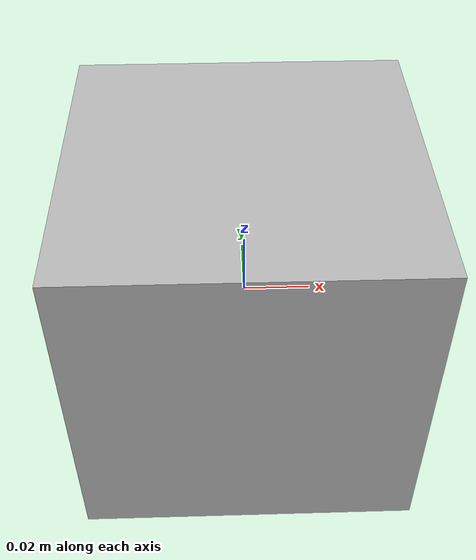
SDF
<?xml version="1.0" ?>
<sdf version="1.10">
  <model name="Cube_plain_white">
    <static>true</static>
    <link name="link">
      <collision name="collider">
        <geometry>
          <box> <size>0.1 0.1 0.1</size> </box>
        </geometry>
      </collision>

      <pose>0 0 0.00 -3.14 0 -3.14</pose>
      <visual name="visual">
        <geometry>
          <mesh>
            <uri>model://Cube_plain_white/Cube.obj</uri>
            <scale>0.05 0.05 0.05</scale>
          </mesh>
        </geometry>
      </visual>
    </link>
  </model>
</sdf>
